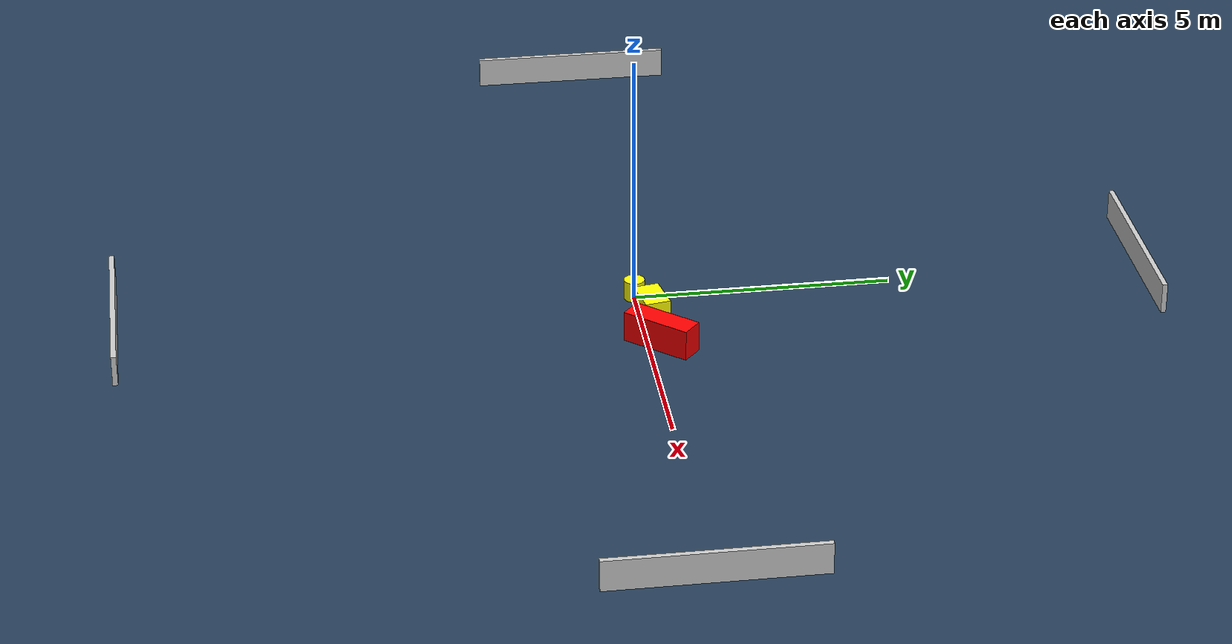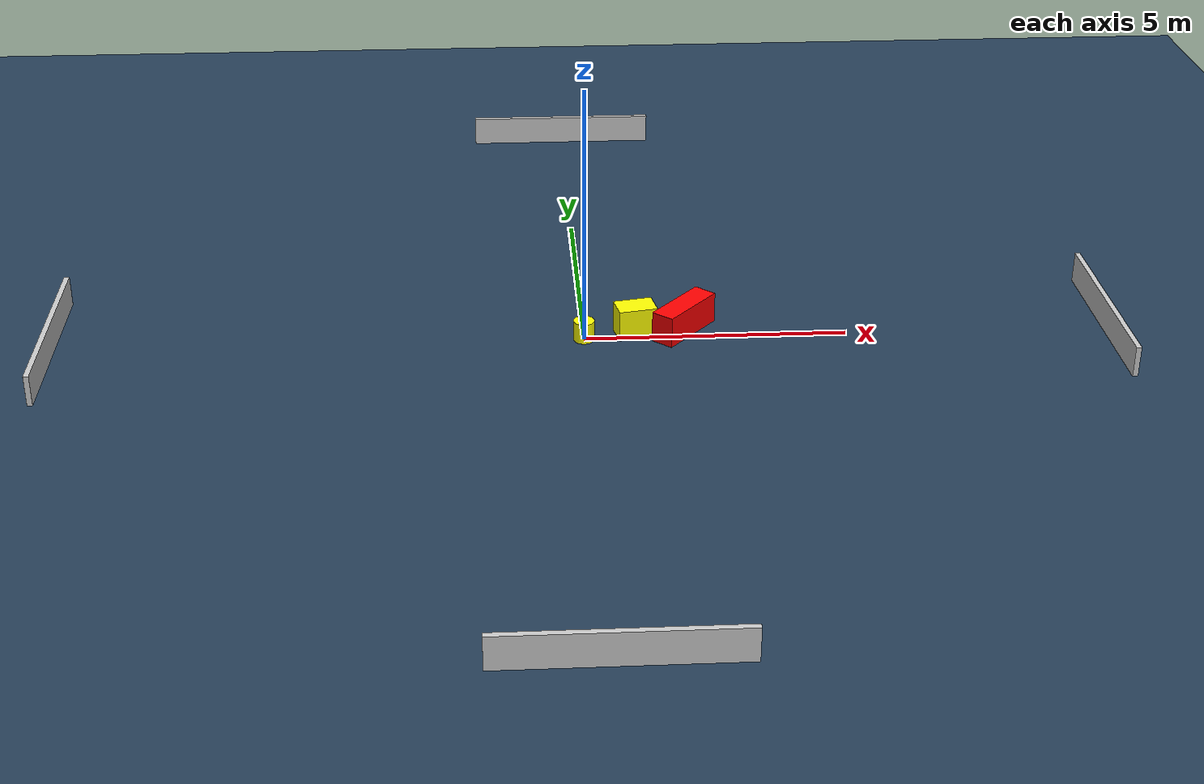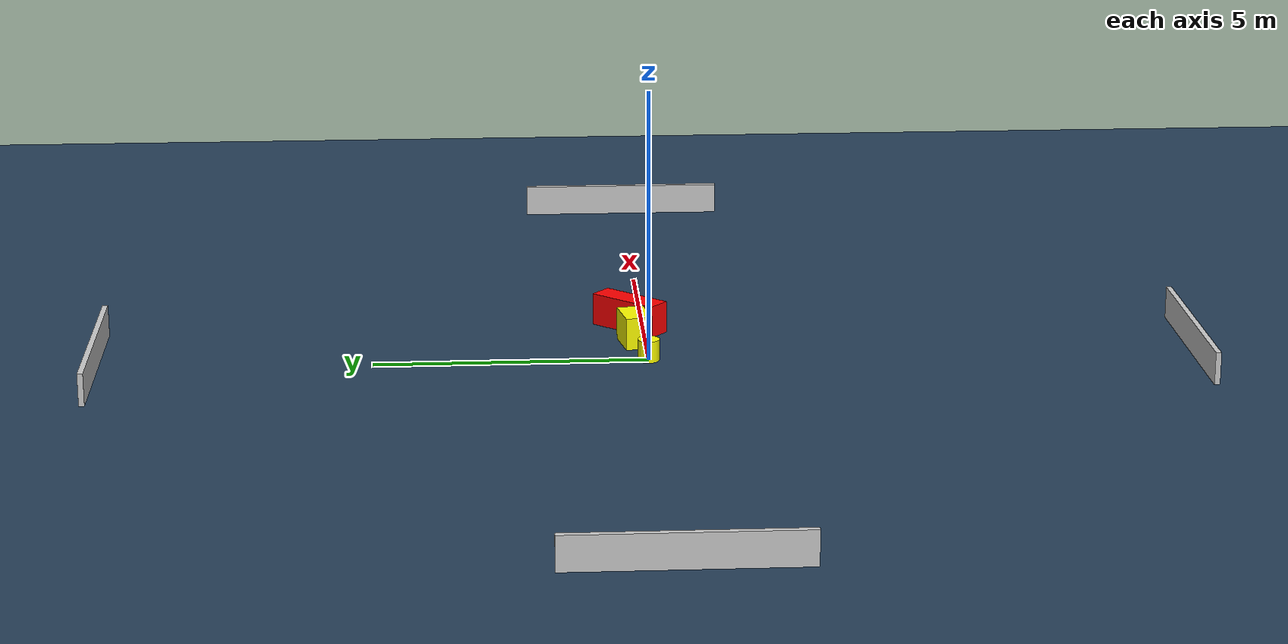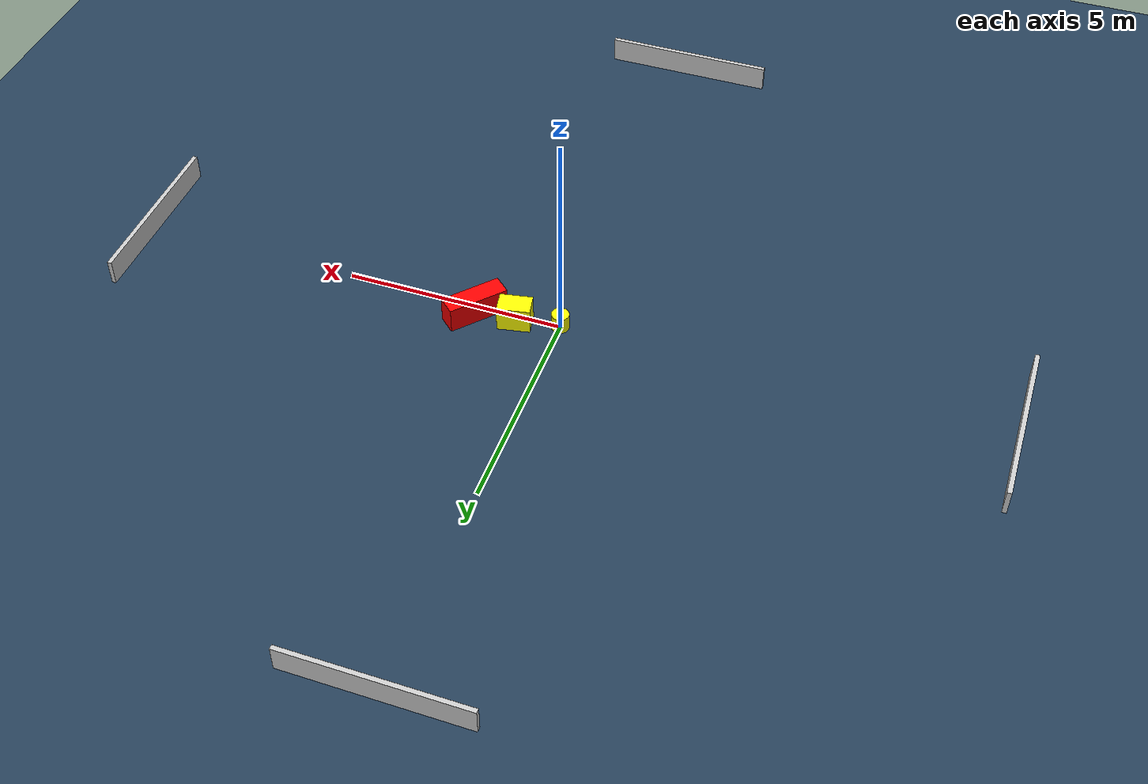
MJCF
<?xml version="1.0" ?>
<mujoco model="generated_environment">
  <option timestep="0.01" integrator="RK4" cone="elliptic"/>
  <default>
    <geom density="1"/>
  </default>
  <asset>
    <texture builtin="gradient" height="3072" name="skybox" rgb1="0.3 0.5 0.7" rgb2="0 0 0" type="skybox" width="512"/>
    <texture builtin="checker" height="300" name="groundplane" rgb1="0.2 0.3 0.4" rgb2="0.1 0.2 0.3" type="2d" width="300"/>
    <material name="groundplane" reflectance="0.2" texrepeat="5 5" texture="groundplane"/>
  </asset>
  <worldbody>
    <light dir="0 0 -1" directional="true" pos="0 0 1.5"/>
    <geom condim="3" friction="0.5 0.005 0.001" material="groundplane" name="floor" pos="0 0 0" size="0 0 0.05" type="plane"/>
    <body name="walls">
      <geom name="wall_1" condim="4" pos="-10.0 0.0 0.3" rgba="0.800000011920929 0.800000011920929 0.800000011920929 1.0" size="0.05 2.0 0.3" type="box"/>
      <geom name="wall_2" condim="4" pos="10.0 0.0 0.3" rgba="0.800000011920929 0.800000011920929 0.800000011920929 1.0" size="0.05 2.0 0.3" type="box"/>
      <geom name="wall_3" condim="4" pos="0.0 -10.0 0.3" rgba="0.800000011920929 0.800000011920929 0.800000011920929 1.0" size="2.0 0.05 0.3" type="box"/>
      <geom name="wall_4" condim="4" pos="0.0 10.0 0.3" rgba="0.800000011920929 0.800000011920929 0.800000011920929 1.0" size="2.0 0.05 0.3" type="box"/>
    </body>
    <body name="robot">
      <joint name="joint_x" type="slide" pos="0 0 0" axis="1 0 0"/>
      <joint name="joint_y" type="slide" pos="0 0 0" axis="0 1 0"/>
      <geom name="robot" type="cylinder" pos="0.0 0.0 0.2" size="0.2 0.2 0.0" mass="5.0" friction="1.0 0.005 0.0001" condim="4" rgba="1.0 1.0 0.0 1.0"/>
    </body>
    <body name="obstacle_1_movable">
      <geom name="obstacle_1_movable" condim="4" pos="0.9850143407331612 0.20040361162278286 0.3" euler="0 0 10.759101674829017" friction="0.0 0.005 0.001" rgba="1.0 1.0 0.0 1.0" size="0.37131074041683776 0.24728266067710453 0.3" type="box" mass="0.1"/>
      <joint type="free"/>
    </body>
    <body name="obstacle_2_static">
      <geom name="obstacle_2_static" condim="4" pos="1.916768527489196 0.24659651183998382 0.3" euler="0 0 48.57163493501653" friction="0.0 0.005 0.001" rgba="1.0 0.0 0.0 1.0" size="0.6978449984249786 0.22830101701300842 0.3" type="box"/>
    </body>
  </worldbody>
  <actuator>
    <motor name="actuator_x" joint="joint_x" gear="1" ctrlrange="-1 1"/>
    <motor name="actuator_y" joint="joint_y" gear="1" ctrlrange="-1 1"/>
  </actuator>
</mujoco>
